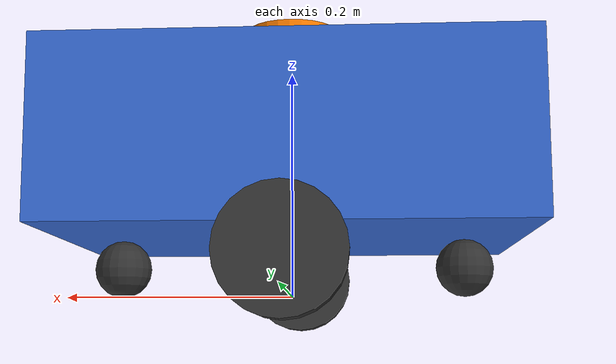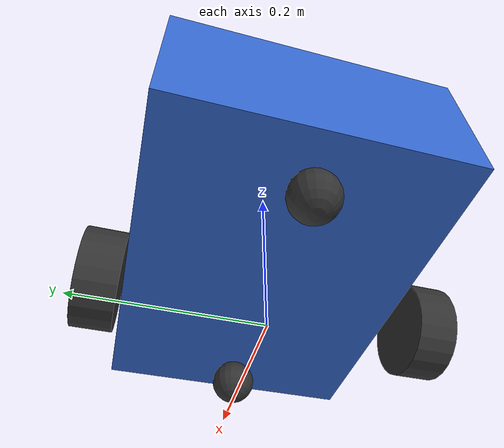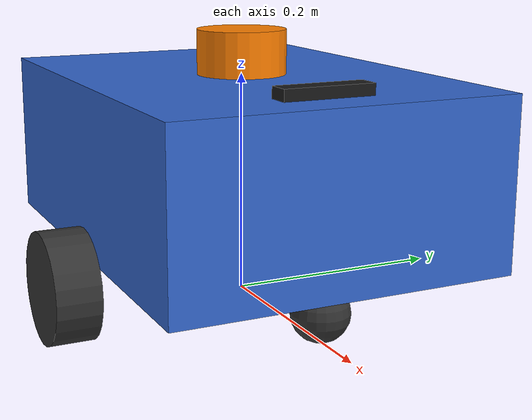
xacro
<?xml version="1.0"?>
<robot xmlns:xacro="http://www.ros.org/wiki/xacro" name="patrol_robot">

  <!-- Include all components -->
  <xacro:include filename="$(find patrol_robot_description)/urdf/common_properties.xacro"/>
  <xacro:include filename="$(find patrol_robot_description)/urdf/robot_base.xacro"/>
  <xacro:include filename="$(find patrol_robot_description)/urdf/lidar.xacro"/>
  <xacro:include filename="$(find patrol_robot_description)/urdf/camera.xacro"/>
  <xacro:include filename="$(find patrol_robot_description)/urdf/gazebo_plugins.xacro"/>

  <!-- Build the robot -->
  <xacro:robot_base/>
  <xacro:lidar parent="base_link"/>
  <xacro:camera parent="base_link"/>
  <xacro:gazebo_plugins/>

</robot>

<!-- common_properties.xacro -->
<robot xmlns:xacro="http://www.ros.org/wiki/xacro">

  <!-- Robot dimensions -->
  <xacro:property name="base_width" value="0.3"/>
  <xacro:property name="base_length" value="0.4"/>
  <xacro:property name="base_height" value="0.15"/>

  <xacro:property name="wheel_radius" value="0.05"/>
  <xacro:property name="wheel_width" value="0.04"/>
  <xacro:property name="wheel_separation" value="0.34"/>
  <xacro:property name="wheel_offset_x" value="0.0"/>
  <xacro:property name="wheel_offset_z" value="-0.025"/>

  <xacro:property name="caster_radius" value="0.025"/>
  <xacro:property name="caster_offset_x" value="0.15"/>

  <!-- Material colors -->
  <material name="white">
    <color rgba="1.0 1.0 1.0 1.0"/>
  </material>

  <material name="dark_grey">
    <color rgba="0.2 0.2 0.2 1.0"/>
  </material>

  <material name="blue">
    <color rgba="0.2 0.4 0.8 1.0"/>
  </material>

  <material name="orange">
    <color rgba="1.0 0.5 0.0 1.0"/>
  </material>

  <!-- Inertia macros -->
  <xacro:macro name="box_inertia" params="m w h d">
    <inertial>
      <mass value="${m}"/>
      <inertia ixx="${(m/12)*(h*h+d*d)}" ixy="0" ixz="0"
               iyy="${(m/12)*(w*w+d*d)}" iyz="0"
               izz="${(m/12)*(w*w+h*h)}"/>
    </inertial>
  </xacro:macro>

  <xacro:macro name="cylinder_inertia" params="m r h">
    <inertial>
      <mass value="${m}"/>
      <inertia ixx="${(m/12)*(3*r*r+h*h)}" ixy="0" ixz="0"
               iyy="${(m/12)*(3*r*r+h*h)}" iyz="0"
               izz="${(m/2)*r*r}"/>
    </inertial>
  </xacro:macro>

  <xacro:macro name="sphere_inertia" params="m r">
    <inertial>
      <mass value="${m}"/>
      <inertia ixx="${(2/5)*m*r*r}" ixy="0" ixz="0"
               iyy="${(2/5)*m*r*r}" iyz="0"
               izz="${(2/5)*m*r*r}"/>
    </inertial>
  </xacro:macro>

</robot>

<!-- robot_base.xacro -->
<robot xmlns:xacro="http://www.ros.org/wiki/xacro">

  <xacro:macro name="robot_base">

    <!-- Base footprint (ground projection) -->
    <link name="base_footprint"/>

    <joint name="base_joint" type="fixed">
      <parent link="base_footprint"/>
      <child link="base_link"/>
      <origin xyz="0 0 ${wheel_radius}" rpy="0 0 0"/>
    </joint>

    <!-- Base link (robot body) -->
    <link name="base_link">
      <visual>
        <origin xyz="0 0 ${base_height/2}" rpy="0 0 0"/>
        <geometry>
          <box size="${base_length} ${base_width} ${base_height}"/>
        </geometry>
        <material name="blue"/>
      </visual>
      <collision>
        <origin xyz="0 0 ${base_height/2}" rpy="0 0 0"/>
        <geometry>
          <box size="${base_length} ${base_width} ${base_height}"/>
        </geometry>
      </collision>
      <xacro:box_inertia m="5.0" w="${base_width}" h="${base_height}" d="${base_length}"/>
    </link>

    <!-- Left wheel -->
    <xacro:wheel prefix="left" reflect="1"/>

    <!-- Right wheel -->
    <xacro:wheel prefix="right" reflect="-1"/>

    <!-- Front caster -->
    <xacro:caster prefix="front" offset_x="${caster_offset_x}"/>

    <!-- Rear caster -->
    <xacro:caster prefix="rear" offset_x="${-caster_offset_x}"/>

  </xacro:macro>

  <!-- Wheel macro -->
  <xacro:macro name="wheel" params="prefix reflect">
    <link name="${prefix}_wheel_link">
      <visual>
        <origin xyz="0 0 0" rpy="${pi/2} 0 0"/>
        <geometry>
          <cylinder radius="${wheel_radius}" length="${wheel_width}"/>
        </geometry>
        <material name="dark_grey"/>
      </visual>
      <collision>
        <origin xyz="0 0 0" rpy="${pi/2} 0 0"/>
        <geometry>
          <cylinder radius="${wheel_radius}" length="${wheel_width}"/>
        </geometry>
      </collision>
      <xacro:cylinder_inertia m="0.5" r="${wheel_radius}" h="${wheel_width}"/>
    </link>

    <joint name="${prefix}_wheel_joint" type="continuous">
      <parent link="base_link"/>
      <child link="${prefix}_wheel_link"/>
      <origin xyz="${wheel_offset_x} ${reflect * wheel_separation/2} ${wheel_offset_z}" rpy="0 0 0"/>
      <axis xyz="0 1 0"/>
      <dynamics damping="0.1" friction="0.1"/>
    </joint>
  </xacro:macro>

  <!-- Caster macro -->
  <xacro:macro name="caster" params="prefix offset_x">
    <link name="${prefix}_caster_link">
      <visual>
        <origin xyz="0 0 0" rpy="0 0 0"/>
        <geometry>
          <sphere radius="${caster_radius}"/>
        </geometry>
        <material name="dark_grey"/>
      </visual>
      <collision>
        <origin xyz="0 0 0" rpy="0 0 0"/>
        <geometry>
          <sphere radius="${caster_radius}"/>
        </geometry>
      </collision>
      <xacro:sphere_inertia m="0.1" r="${caster_radius}"/>
    </link>

    <joint name="${prefix}_caster_joint" type="fixed">
      <parent link="base_link"/>
      <child link="${prefix}_caster_link"/>
      <origin xyz="${offset_x} 0 ${-wheel_radius + caster_radius}" rpy="0 0 0"/>
    </joint>

    <!-- Gazebo friction settings for caster -->
    <gazebo reference="${prefix}_caster_link">
      <mu1>0.001</mu1>
      <mu2>0.001</mu2>
      <material>Gazebo/DarkGrey</material>
    </gazebo>
  </xacro:macro>

</robot>

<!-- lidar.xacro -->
<robot xmlns:xacro="http://www.ros.org/wiki/xacro">

  <xacro:property name="lidar_radius" value="0.04"/>
  <xacro:property name="lidar_height" value="0.04"/>
  <xacro:property name="lidar_offset_z" value="${base_height + lidar_height/2}"/>

  <xacro:macro name="lidar" params="parent">

    <link name="lidar_link">
      <visual>
        <origin xyz="0 0 0" rpy="0 0 0"/>
        <geometry>
          <cylinder radius="${lidar_radius}" length="${lidar_height}"/>
        </geometry>
        <material name="orange"/>
      </visual>
      <collision>
        <origin xyz="0 0 0" rpy="0 0 0"/>
        <geometry>
          <cylinder radius="${lidar_radius}" length="${lidar_height}"/>
        </geometry>
      </collision>
      <xacro:cylinder_inertia m="0.2" r="${lidar_radius}" h="${lidar_height}"/>
    </link>

    <joint name="lidar_joint" type="fixed">
      <parent link="${parent}"/>
      <child link="lidar_link"/>
      <origin xyz="0 0 ${lidar_offset_z}" rpy="0 0 0"/>
    </joint>

    <!-- Gazebo material -->
    <gazebo reference="lidar_link">
      <material>Gazebo/Orange</material>
    </gazebo>

  </xacro:macro>

</robot>

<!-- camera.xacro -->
<robot xmlns:xacro="http://www.ros.org/wiki/xacro">

  <xacro:macro name="camera" params="parent">

    <!-- Camera link -->
    <link name="camera_link">
      <visual>
        <origin xyz="0 0 0" rpy="0 0 0"/>
        <geometry>
          <box size="0.02 0.08 0.02"/>
        </geometry>
        <material name="black">
          <color rgba="0.1 0.1 0.1 1.0"/>
        </material>
      </visual>
      <collision>
        <origin xyz="0 0 0" rpy="0 0 0"/>
        <geometry>
          <box size="0.02 0.08 0.02"/>
        </geometry>
      </collision>
      <inertial>
        <mass value="0.1"/>
        <origin xyz="0 0 0" rpy="0 0 0"/>
        <inertia ixx="0.00001" ixy="0" ixz="0" iyy="0.00001" iyz="0" izz="0.00001"/>
      </inertial>
    </link>

    <!-- Camera optical frame (Z forward, X right, Y down) -->
    <link name="camera_optical_link"/>

    <!-- Mount camera on top of robot, facing forward -->
    <joint name="camera_joint" type="fixed">
      <origin xyz="0.15 0 0.15" rpy="0 0 0"/>
      <parent link="${parent}"/>
      <child link="camera_link"/>
    </joint>

    <!-- Optical frame transform -->
    <joint name="camera_optical_joint" type="fixed">
      <origin xyz="0 0 0" rpy="-1.5707963 0 -1.5707963"/>
      <parent link="camera_link"/>
      <child link="camera_optical_link"/>
    </joint>

  </xacro:macro>

</robot>
